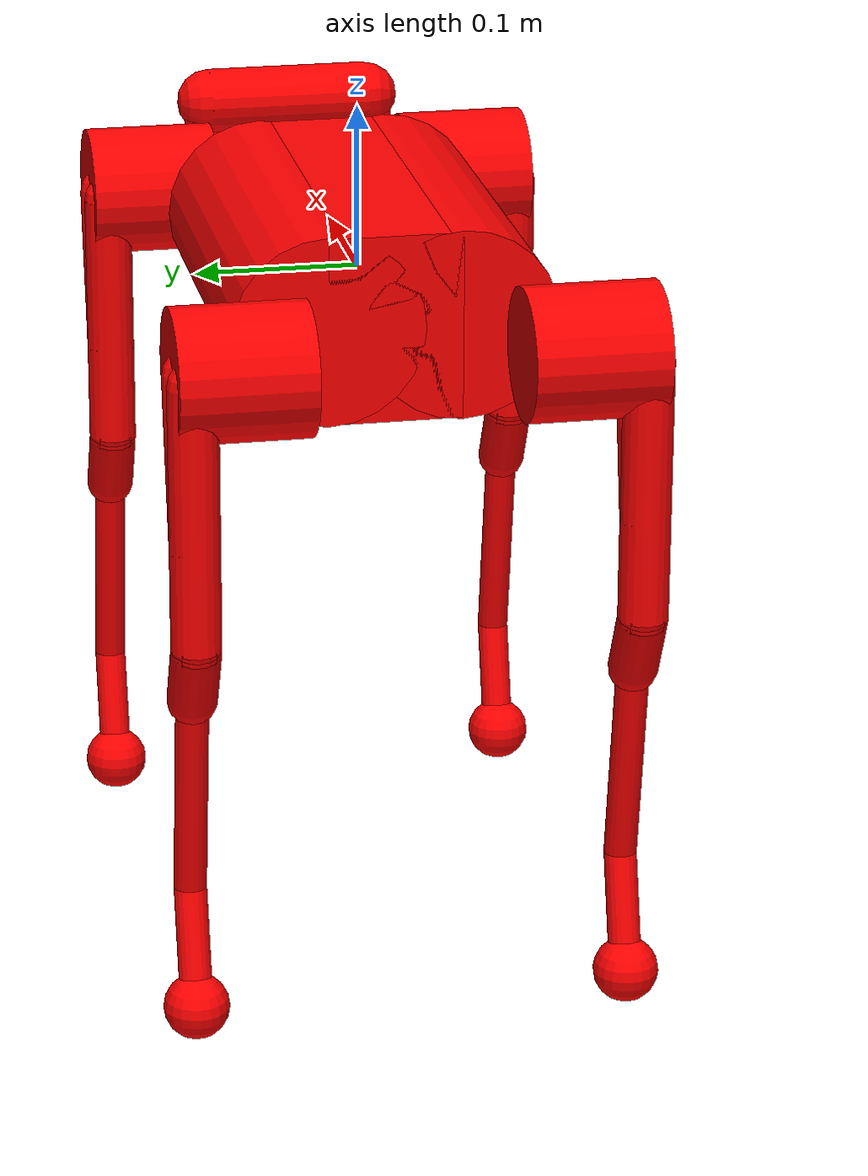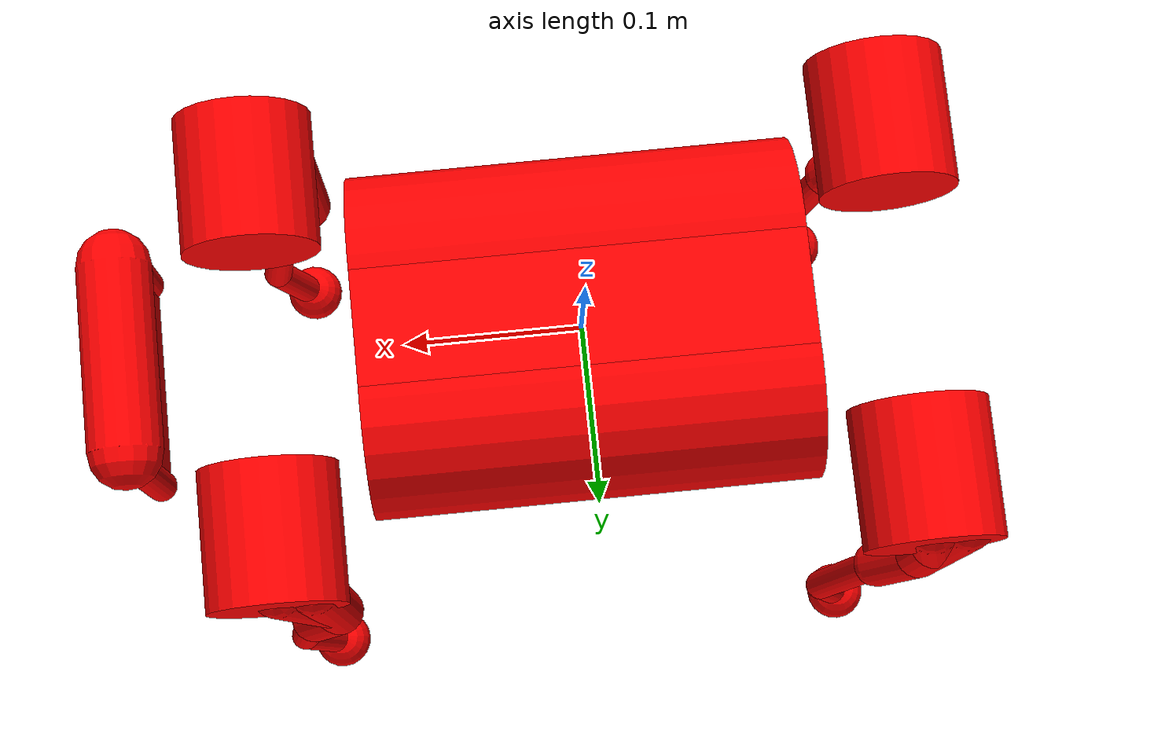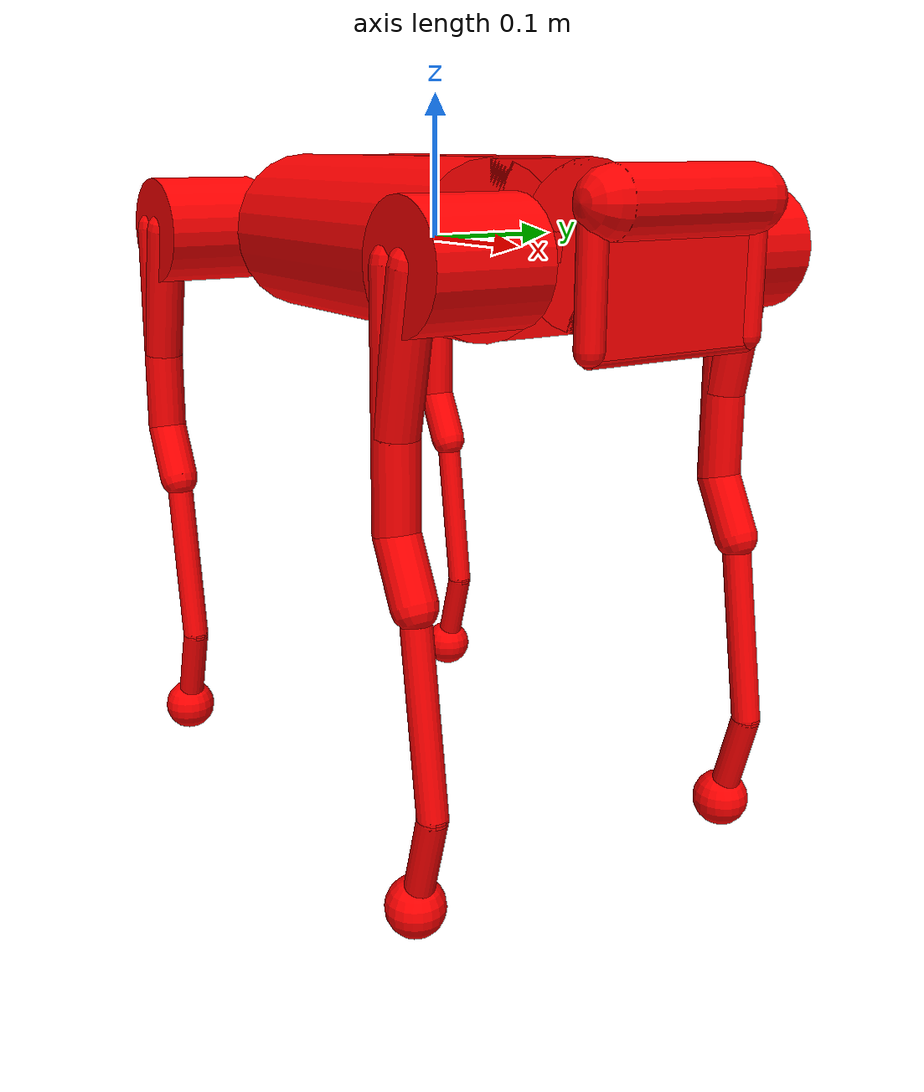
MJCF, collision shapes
<?xml version="1.0" ?>
<mujoco model="a1">
	<compiler meshdir="a1/meshes" texturedir="a1/textures" angle="radian" autolimits="true" balanceinertia="true" boundmass="0.000001" boundinertia="0.000001"/>
	<default>
		<default class="visual">
			<geom contype="0" conaffinity="0"/>
		</default>
		<default class="collision">
			<geom rgba="1.0 0.0 0.0 0.0"/>
		</default>
	</default>
	<asset>
		<mesh name="trunk" file="obj/trunk.obj" scale="1.0 1.0 1.0"/>
		<mesh name="hip" file="stl/hip.stl" scale="1.0 1.0 1.0"/>
		<mesh name="thigh_mirror" file="stl/thigh_mirror.stl" scale="1.0 1.0 1.0"/>
		<mesh name="calf" file="stl/calf.stl" scale="1.0 1.0 1.0"/>
		<mesh name="thigh" file="stl/thigh.stl" scale="1.0 1.0 1.0"/>
		<material name="carbonfibre" texture="trunk_A1"/>
		<material name="dark" rgba="0.20000000298023224 0.20000000298023224 0.20000000298023224 1.0" emission="0.0" specular="0.0"/>
		<texture name="trunk_A1" type="2d" file="trunk_A1.png"/>
	</asset>
	<worldbody>
		<body name="a1" pos="0.0 0.0 0.0" quat="1.0 0.0 0.0 0.0">
			<body name="trunk" pos="0.0 0.0 0.0" quat="1.0 0.0 0.0 0.0">
				<geom name="Geom_0" type="mesh" pos="0.052101269364356995 -0.004562626592814922 0.00041792113916017115" quat="-0.010320212692022324 0.7039735317230225 0.01097667682915926 0.7100664377212524" mesh="trunk" material="carbonfibre" class="visual"/>
				<geom name="Geom_1" type="box" pos="0.0 0.0 0.0" quat="1.0 0.0 0.0 0.0" size="0.125 0.03999999910593033 0.05700000002980232" class="collision"/>
				<geom name="Geom_2" type="cylinder" pos="0.0 -0.03999999910593033 0.0" quat="0.7071067690849304 0.0 0.7071067690849304 0.0" size="0.057999998331069946 0.125 0.0" class="collision"/>
				<geom name="Geom_3" type="cylinder" pos="0.0 0.03999999910593033 0.0" quat="0.7071067690849304 0.0 0.7071067690849304 0.0" size="0.057999998331069946 0.125 0.0" class="collision"/>
				<geom name="Geom_4" type="box" pos="0.25 0.0 0.0" quat="1.0 0.0 0.0 0.0" size="0.004999999888241291 0.05999999865889549 0.05000000074505806" class="collision"/>
				<geom name="Geom_5" type="capsule" pos="0.25 0.05999999865889549 -0.009999999776482582" quat="1.0 0.0 0.0 0.0" size="0.008999999612569809 0.03500000014901161 0.0" class="collision"/>
				<geom name="Geom_6" type="capsule" pos="0.25 -0.05999999865889549 -0.009999999776482582" quat="1.0 0.0 0.0 0.0" size="0.008999999612569809 0.03500000014901161 0.0" class="collision"/>
				<geom name="Geom_7" type="capsule" pos="0.25 0.0 -0.05000000074505806" quat="0.7071067690849304 0.7071067690849304 0.0 0.0" size="0.004999999888241291 0.05999999865889549 0.0" class="collision"/>
				<geom name="Geom_8" type="capsule" pos="0.2549999952316284 0.0 0.03550000116229057" quat="0.7071067690849304 0.7071067690849304 0.0 0.0" size="0.020999999716877937 0.052000001072883606 0.0" class="collision"/>
				<body name="FL_hip" pos="0.18299999833106995 0.04699999839067459 0.0" quat="1.0 0.0 0.0 0.0">
					<inertial mass="0.6959999799728394" pos="-0.0033110000658780336 0.0006350000039674342 3.099999958067201e-05" quat="0.4944989085197449 0.4915069043636322 0.5062679052352905 0.5075278878211975" diaginertia="0.0008077520178630948 0.000552929996047169 0.00046898299478925765"/>
					<geom name="Geom_19" type="mesh" pos="-0.008014652878046036 0.00012613194121513516 -1.8650268884812249e-06" quat="0.49897071719169617 0.49886655807495117 0.5010176301002502 0.5011404156684875" mesh="hip" material="dark" class="visual"/>
					<geom name="Geom_20" type="cylinder" pos="0.0 0.054999999701976776 0.0" quat="0.7071067690849304 0.7071067690849304 0.0 0.0" size="0.03999999910593033 0.03999999910593033 0.0" class="collision"/>
					<geom name="Geom_21" type="cylinder" pos="0.0 0.054999999701976776 0.0" quat="0.7071067690849304 0.7071067690849304 0.0 0.0" size="0.03999999910593033 0.03999999910593033 0.0" class="collision"/>
					<joint name="FL_hip_joint" type="hinge" pos="0.0 0.0 0.0" range="-0.8028510212898254 0.8028510212898254" axis="1.0 0.0 0.0"/>
					<body name="FL_thigh" pos="0.0 0.08505000174045563 0.0" quat="1.0 0.0 0.0 0.0">
						<inertial mass="1.0130000114440918" pos="-0.0032369999680668116 -0.02232700027525425 -0.027326000854372978" quat="0.9991252422332764 0.002563930582255125 -0.04095311090350151 0.008060911670327187" diaginertia="0.005557389929890633 0.005139360204339027 0.0013394400011748075"/>
						<geom name="Geom_22" type="mesh" pos="-0.003107831347733736 -0.02179619111120701 -0.02706850692629814" quat="0.7560091614723206 0.09584572911262512 -0.024577196687459946 0.6470391750335693" mesh="thigh" material="dark" class="visual"/>
						<geom name="Geom_23" type="capsule" pos="-0.019999999552965164 0.0 -0.07999999821186066" quat="1.0 0.0 0.0 0.0" size="0.014999999664723873 0.07999999821186066 0.0" class="collision"/>
						<geom name="Geom_24" type="capsule" pos="-0.009999999776482582 0.0 -0.05000000074505806" quat="0.9951333403587341 0.0 0.0985376164317131 0.0" size="0.014999999664723873 0.05099019408226013 0.0" class="collision"/>
						<geom name="Geom_25" type="capsule" pos="-0.009999999776482582 0.0 -0.18000000715255737" quat="0.9732490181922913 0.0 -0.22975291311740875 0.0" size="0.014999999664723873 0.022360680624842644 0.0" class="collision"/>
						<joint name="FL_thigh_joint" type="hinge" pos="0.0 0.0 0.0" range="-1.0471999645233154 4.1887898445129395" axis="0.0 1.0 0.0"/>
						<body name="FL_calf" pos="0.0 0.0 -0.20000000298023224" quat="1.0 0.0 0.0 0.0">
							<inertial mass="0.22599999606609344" pos="0.004726590123027563 0.0 -0.131974995136261" quat="0.7068864107131958 0.017653008922934532 0.017653008922934532 0.7068864107131958" diaginertia="0.003403439885005355 0.0033939299173653126 3.548340100678615e-05"/>
							<geom name="Geom_26" type="mesh" pos="0.006395931821316481 2.4358414520975202e-05 -0.12493624538183212" quat="0.7065389752388 -0.000910990172997117 -0.0007131483871489763 0.707673192024231" mesh="calf" material="dark" class="visual"/>
							<geom name="Geom_27" type="capsule" pos="0.009999999776482582 0.0 -0.06499999761581421" quat="0.9970886707305908 0.0 -0.0762505829334259 0.0" size="0.009999999776482582 0.06576473265886307 0.0" class="collision"/>
							<geom name="Geom_28" type="capsule" pos="0.009999999776482582 0.0 -0.16500000655651093" quat="0.9903342723846436 0.0 0.13870121538639069 0.0" size="0.009999999776482582 0.03640054911375046 0.0" class="collision"/>
							<geom name="Geom_29" type="sphere" pos="0.0 0.0 -0.20000000298023224" quat="1.0 0.0 0.0 0.0" size="0.019999999552965164 0.0 0.0" class="collision"/>
							<joint name="FL_calf_joint" type="hinge" pos="0.0 0.0 0.0" range="-2.6965301036834717 -0.916297972202301" axis="0.0 1.0 0.0"/>
						</body>
					</body>
				</body>
				<body name="RR_hip" pos="-0.18299999833106995 -0.04699999839067459 0.0" quat="1.0 0.0 0.0 0.0">
					<inertial mass="0.6959999799728394" pos="0.0033110000658780336 -0.0006350000039674342 3.099999958067201e-05" quat="0.4915069043636322 0.4944989085197449 0.5075278878211975 0.5062679052352905" diaginertia="0.0008077520178630948 0.000552929996047169 0.00046898299478925765"/>
					<geom name="Geom_30" type="mesh" pos="0.008014652878046036 -0.00012613194121513516 -1.8650268884812249e-06" quat="0.5011404156684875 0.5010176301002502 -0.49886655807495117 -0.49897071719169617" mesh="hip" material="dark" class="visual"/>
					<geom name="Geom_31" type="cylinder" pos="0.0 -0.054999999701976776 0.0" quat="0.7071067690849304 0.7071067690849304 0.0 0.0" size="0.03999999910593033 0.03999999910593033 0.0" class="collision"/>
					<joint name="RR_hip_joint" type="hinge" pos="0.0 0.0 0.0" range="-0.8028510212898254 0.8028510212898254" axis="1.0 0.0 0.0"/>
					<body name="RR_thigh" pos="0.0 -0.08505000174045563 0.0" quat="1.0 0.0 0.0 0.0">
						<inertial mass="1.0130000114440918" pos="-0.0032369999680668116 0.02232700027525425 -0.027326000854372978" quat="0.9991252422332764 -0.002563930582255125 -0.04095311090350151 -0.008060911670327187" diaginertia="0.005557389929890633 0.005139360204339027 0.0013394400011748075"/>
						<geom name="Geom_32" type="mesh" pos="-0.0031076984014362097 0.021799704059958458 -0.027041105553507805" quat="0.6470721960067749 -0.024537459015846252 0.09590362757444382 0.7559748291969299" mesh="thigh_mirror" material="dark" class="visual"/>
						<geom name="Geom_33" type="capsule" pos="-0.019999999552965164 0.0 -0.07999999821186066" quat="1.0 0.0 0.0 0.0" size="0.014999999664723873 0.07999999821186066 0.0" class="collision"/>
						<geom name="Geom_34" type="capsule" pos="-0.009999999776482582 0.0 -0.05000000074505806" quat="0.9951333403587341 0.0 0.0985376164317131 0.0" size="0.014999999664723873 0.05099019408226013 0.0" class="collision"/>
						<geom name="Geom_35" type="capsule" pos="-0.009999999776482582 0.0 -0.18000000715255737" quat="0.9732490181922913 0.0 -0.22975291311740875 0.0" size="0.014999999664723873 0.022360680624842644 0.0" class="collision"/>
						<joint name="RR_thigh_joint" type="hinge" pos="0.0 0.0 0.0" range="-1.0471999645233154 4.1887898445129395" axis="0.0 1.0 0.0"/>
						<body name="RR_calf" pos="0.0 0.0 -0.20000000298023224" quat="1.0 0.0 0.0 0.0">
							<inertial mass="0.22599999606609344" pos="0.004726590123027563 0.0 -0.131974995136261" quat="0.7068864107131958 0.017653008922934532 0.017653008922934532 0.7068864107131958" diaginertia="0.003403439885005355 0.0033939299173653126 3.548340100678615e-05"/>
							<geom name="Geom_36" type="mesh" pos="0.006395931821316481 2.4358414520975202e-05 -0.12493624538183212" quat="0.7065389752388 -0.000910990172997117 -0.0007131483871489763 0.707673192024231" mesh="calf" material="dark" class="visual"/>
							<geom name="Geom_37" type="capsule" pos="0.009999999776482582 0.0 -0.06499999761581421" quat="0.9970886707305908 0.0 -0.0762505829334259 0.0" size="0.009999999776482582 0.06576473265886307 0.0" class="collision"/>
							<geom name="Geom_38" type="capsule" pos="0.009999999776482582 0.0 -0.16500000655651093" quat="0.9903342723846436 0.0 0.13870121538639069 0.0" size="0.009999999776482582 0.03640054911375046 0.0" class="collision"/>
							<geom name="Geom_39" type="sphere" pos="0.0 0.0 -0.20000000298023224" quat="1.0 0.0 0.0 0.0" size="0.019999999552965164 0.0 0.0" class="collision"/>
							<joint name="RR_calf_joint" type="hinge" pos="0.0 0.0 0.0" range="-2.6965301036834717 -0.916297972202301" axis="0.0 1.0 0.0"/>
						</body>
					</body>
				</body>
				<body name="RL_hip" pos="-0.18299999833106995 0.04699999839067459 0.0" quat="1.0 0.0 0.0 0.0">
					<inertial mass="0.6959999799728394" pos="0.0033110000658780336 0.0006350000039674342 3.099999958067201e-05" quat="0.5062679052352905 0.5075278878211975 0.4944989085197449 0.4915069043636322" diaginertia="0.0008077520178630948 0.000552929996047169 0.00046898299478925765"/>
					<geom name="Geom_40" type="mesh" pos="0.008014652878046036 0.00012613194121513516 1.8650268884812249e-06" quat="-0.5010176301002502 0.5011404156684875 0.49897071719169617 -0.49886655807495117" mesh="hip" material="dark" class="visual"/>
					<geom name="Geom_41" type="cylinder" pos="0.0 0.054999999701976776 0.0" quat="0.7071067690849304 0.7071067690849304 0.0 0.0" size="0.03999999910593033 0.03999999910593033 0.0" class="collision"/>
					<joint name="RL_hip_joint" type="hinge" pos="0.0 0.0 0.0" range="-0.8028510212898254 0.8028510212898254" axis="1.0 0.0 0.0"/>
					<body name="RL_thigh" pos="0.0 0.08505000174045563 0.0" quat="1.0 0.0 0.0 0.0">
						<inertial mass="1.0130000114440918" pos="-0.0032369999680668116 -0.02232700027525425 -0.027326000854372978" quat="0.9991252422332764 0.002563930582255125 -0.04095311090350151 0.008060911670327187" diaginertia="0.005557389929890633 0.005139360204339027 0.0013394400011748075"/>
						<geom name="Geom_42" type="mesh" pos="-0.003107831347733736 -0.02179619111120701 -0.02706850692629814" quat="0.7560091614723206 0.09584572911262512 -0.024577196687459946 0.6470391750335693" mesh="thigh" material="dark" class="visual"/>
						<geom name="Geom_43" type="capsule" pos="-0.019999999552965164 0.0 -0.07999999821186066" quat="1.0 0.0 0.0 0.0" size="0.014999999664723873 0.07999999821186066 0.0" class="collision"/>
						<geom name="Geom_44" type="capsule" pos="-0.009999999776482582 0.0 -0.05000000074505806" quat="0.9951333403587341 0.0 0.0985376164317131 0.0" size="0.014999999664723873 0.05099019408226013 0.0" class="collision"/>
						<geom name="Geom_45" type="capsule" pos="-0.009999999776482582 0.0 -0.18000000715255737" quat="0.9732490181922913 0.0 -0.22975291311740875 0.0" size="0.014999999664723873 0.022360680624842644 0.0" class="collision"/>
						<joint name="RL_thigh_joint" type="hinge" pos="0.0 0.0 0.0" range="-1.0471999645233154 4.1887898445129395" axis="0.0 1.0 0.0"/>
						<body name="RL_calf" pos="0.0 0.0 -0.20000000298023224" quat="1.0 0.0 0.0 0.0">
							<inertial mass="0.22599999606609344" pos="0.004726590123027563 0.0 -0.131974995136261" quat="0.7068864107131958 0.017653008922934532 0.017653008922934532 0.7068864107131958" diaginertia="0.003403439885005355 0.0033939299173653126 3.548340100678615e-05"/>
							<geom name="Geom_46" type="mesh" pos="0.006395931821316481 2.4358414520975202e-05 -0.12493624538183212" quat="0.7065389752388 -0.000910990172997117 -0.0007131483871489763 0.707673192024231" mesh="calf" material="dark" class="visual"/>
							<geom name="Geom_47" type="capsule" pos="0.009999999776482582 0.0 -0.06499999761581421" quat="0.9970886707305908 0.0 -0.0762505829334259 0.0" size="0.009999999776482582 0.06576473265886307 0.0" class="collision"/>
							<geom name="Geom_48" type="capsule" pos="0.009999999776482582 0.0 -0.16500000655651093" quat="0.9903342723846436 0.0 0.13870121538639069 0.0" size="0.009999999776482582 0.03640054911375046 0.0" class="collision"/>
							<geom name="Geom_49" type="sphere" pos="0.0 0.0 -0.20000000298023224" quat="1.0 0.0 0.0 0.0" size="0.019999999552965164 0.0 0.0" class="collision"/>
							<joint name="RL_calf_joint" type="hinge" pos="0.0 0.0 0.0" range="-2.6965301036834717 -0.916297972202301" axis="0.0 1.0 0.0"/>
						</body>
					</body>
				</body>
				<body name="FR_hip" pos="0.18299999833106995 -0.04699999839067459 0.0" quat="1.0 0.0 0.0 0.0">
					<inertial mass="0.6959999799728394" pos="-0.0033110000658780336 -0.0006350000039674342 3.099999958067201e-05" quat="0.5075278878211975 0.5062679052352905 0.4915069043636322 0.4944989085197449" diaginertia="0.0008077520178630948 0.000552929996047169 0.00046898299478925765"/>
					<geom name="Geom_9" type="mesh" pos="-0.008014652878046036 -0.00012613194121513516 1.8650268884812249e-06" quat="-0.49886655807495117 0.49897071719169617 -0.5011404156684875 0.5010176301002502" mesh="hip" material="dark" class="visual"/>
					<geom name="Geom_10" type="cylinder" pos="0.0 -0.054999999701976776 0.0" quat="0.7071067690849304 0.7071067690849304 0.0 0.0" size="0.03999999910593033 0.03999999910593033 0.0" class="collision"/>
					<joint name="FR_hip_joint" type="hinge" pos="0.0 0.0 0.0" range="-0.8028510212898254 0.8028510212898254" axis="1.0 0.0 0.0"/>
					<body name="FR_thigh" pos="0.0 -0.08505000174045563 0.0" quat="1.0 0.0 0.0 0.0">
						<inertial mass="1.0130000114440918" pos="-0.0032369999680668116 0.02232700027525425 -0.027326000854372978" quat="0.9991252422332764 -0.002563930582255125 -0.04095311090350151 -0.008060911670327187" diaginertia="0.005557389929890633 0.005139360204339027 0.0013394400011748075"/>
						<geom name="Geom_11" type="mesh" pos="-0.0031076984014362097 0.021799704059958458 -0.027041105553507805" quat="0.6470721960067749 -0.024537459015846252 0.09590362757444382 0.7559748291969299" mesh="thigh_mirror" material="dark" class="visual"/>
						<geom name="Geom_12" type="capsule" pos="-0.019999999552965164 0.0 -0.07999999821186066" quat="1.0 0.0 0.0 0.0" size="0.014999999664723873 0.07999999821186066 0.0" class="collision"/>
						<geom name="Geom_13" type="capsule" pos="-0.009999999776482582 0.0 -0.05000000074505806" quat="0.9951333403587341 0.0 0.0985376164317131 0.0" size="0.014999999664723873 0.05099019408226013 0.0" class="collision"/>
						<geom name="Geom_14" type="capsule" pos="-0.009999999776482582 0.0 -0.18000000715255737" quat="0.9732490181922913 0.0 -0.22975291311740875 0.0" size="0.014999999664723873 0.022360680624842644 0.0" class="collision"/>
						<joint name="FR_thigh_joint" type="hinge" pos="0.0 0.0 0.0" range="-1.0471999645233154 4.1887898445129395" axis="0.0 1.0 0.0"/>
						<body name="FR_calf" pos="0.0 0.0 -0.20000000298023224" quat="1.0 0.0 0.0 0.0">
							<inertial mass="0.22599999606609344" pos="0.004726590123027563 0.0 -0.131974995136261" quat="0.7068864107131958 0.017653008922934532 0.017653008922934532 0.7068864107131958" diaginertia="0.003403439885005355 0.0033939299173653126 3.548340100678615e-05"/>
							<geom name="Geom_15" type="mesh" pos="0.006395931821316481 2.4358414520975202e-05 -0.12493624538183212" quat="0.7065389752388 -0.000910990172997117 -0.0007131483871489763 0.707673192024231" mesh="calf" material="dark" class="visual"/>
							<geom name="Geom_16" type="capsule" pos="0.009999999776482582 0.0 -0.06499999761581421" quat="0.9970886707305908 0.0 -0.0762505829334259 0.0" size="0.009999999776482582 0.06576473265886307 0.0" class="collision"/>
							<geom name="Geom_17" type="capsule" pos="0.009999999776482582 0.0 -0.16500000655651093" quat="0.9903342723846436 0.0 0.13870121538639069 0.0" size="0.009999999776482582 0.03640054911375046 0.0" class="collision"/>
							<geom name="Geom_18" type="sphere" pos="0.0 0.0 -0.20000000298023224" quat="1.0 0.0 0.0 0.0" size="0.019999999552965164 0.0 0.0" class="collision"/>
							<joint name="FR_calf_joint" type="hinge" pos="0.0 0.0 0.0" range="-2.6965301036834717 -0.916297972202301" axis="0.0 1.0 0.0"/>
						</body>
					</body>
				</body>
			</body>
		</body>
	</worldbody>
	<equality/>
</mujoco>
